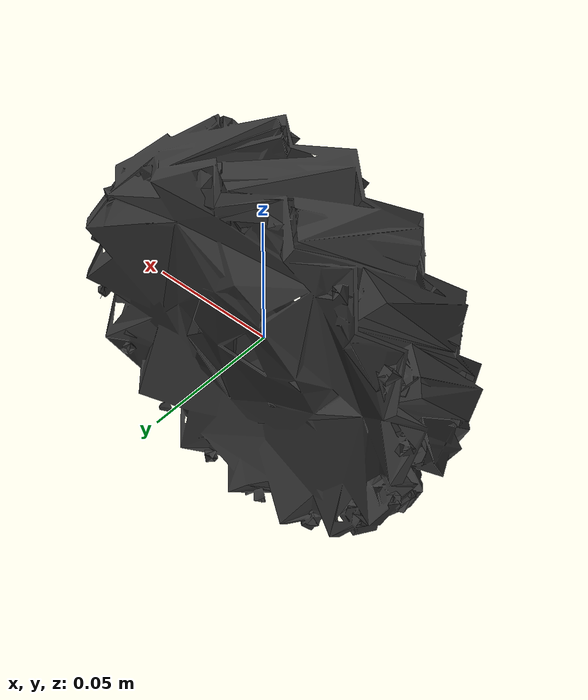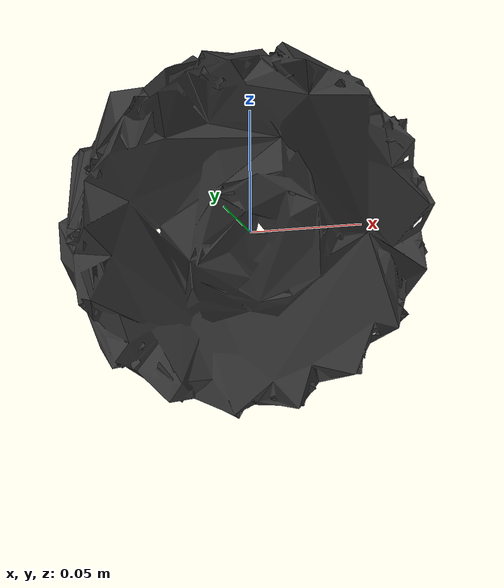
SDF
<?xml version="1.0"?>
<sdf version="1.7">
  <model name="mecanum_wheel">
    <link name="wheel_link">
      <inertial>
        <mass>1.0</mass>
        <inertia>
          <ixx>0.00256</ixx>
          <iyy>0.00448</iyy>
          <izz>0.00256</izz>
        </inertia>
      </inertial>

      <!-- Visual: 使用详细 DAE mesh -->
      <visual name="visual">
        <pose>0 0 0 0 1.5708 0</pose>
        <geometry>
          <mesh>
            <uri>model://rmua19_standard_robot/meshes/wheel_left01.dae</uri>
          </mesh>
        </geometry>
        <material>
          <ambient>0.2 0.2 0.2 1</ambient>
          <diffuse>0.2 0.2 0.2 1</diffuse>
        </material>
      </visual>

      <!-- Collision: 使用简化圆柱体 -->
      <collision name="collision">
        <pose>0 0 0 1.5708 0 0</pose>
        <geometry>
          <cylinder>
            <radius>0.0758</radius>
            <length>0.08</length>
          </cylinder>
        </geometry>
        <surface>
          <friction>
            <ode>
              <mu>0.8</mu>
              <mu2>0.8</mu2>
            </ode>
          </friction>
        </surface>
      </collision>
    </link>
  </model>
</sdf>
